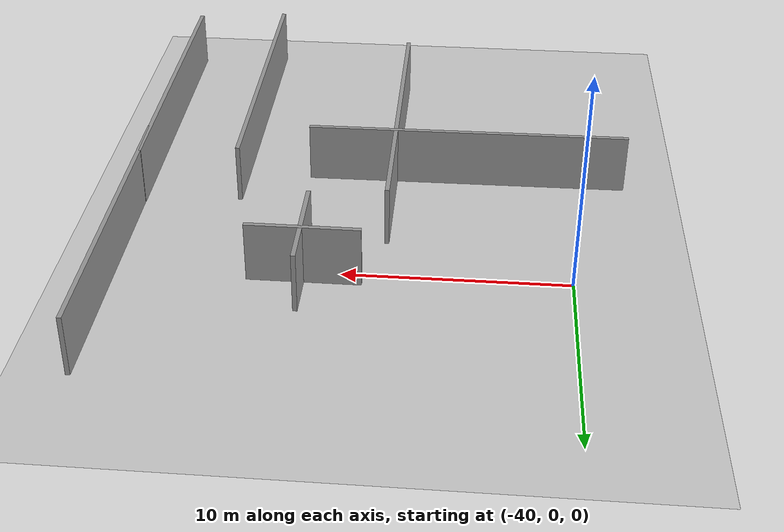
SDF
<sdf version="1.7">
 <world name="default">
  <model name="ground_plane">
   <static>1</static>
   <link name="link">
    <collision name="collision">
     <geometry><plane><normal>0 0 1</normal><size>100 100</size></plane></geometry>
     <surface>
      <contact><collide_bitmask>65535</collide_bitmask></contact>
      <friction><ode><mu>100</mu><mu2>50</mu2></ode></friction>
     </surface>
    </collision>
    <visual name="visual">
     <cast_shadows>0</cast_shadows>
     <geometry><plane><normal>0 0 1</normal><size>100 100</size></plane></geometry>
     <material>
      <script><uri>file://media/materials/scripts/gazebo.material</uri><name>Gazebo/Grey</name></script>
     </material>
    </visual>
   </link>
  </model>
  <model name="grey_wall_5">
   <link name="link">
    <pose>0 0 1.4 0 -0 0</pose>
    <inertial>
     <mass>1</mass>
     <inertia><ixx>1</ixx><ixy>0</ixy><ixz>0</ixz><iyy>1</iyy><iyz>0</iyz><izz>1</izz></inertia>
    </inertial>
    <visual name="visual">
     <cast_shadows>0</cast_shadows>
     <geometry><box><size>5 0.2 2.8</size></box></geometry>
     <material>
      <script>
       <uri>model://grey_wall/materials/scripts</uri>
       <uri>model://grey_wall/materials/textures</uri>
       <name>vrc/grey_wall</name>
      </script>
      <shader type="pixel"><normal_map>__default__</normal_map></shader>
      <ambient>1 1 1 1</ambient>
      <diffuse>1 1 1 1</diffuse>
      <specular>0 0 0 1</specular>
      <emissive>0 0 0 1</emissive>
     </material>
    </visual>
    <collision name="collision">
     <geometry><box><size>5 0.2 2.8</size></box></geometry>
     <surface>
      <friction>
       <ode><mu>1</mu><mu2>1</mu2><fdir1>0 0 0</fdir1><slip1>0</slip1><slip2>0</slip2></ode>
       <torsional>
        <coefficient>1</coefficient>
        <patch_radius>0</patch_radius>
        <surface_radius>0</surface_radius>
        <use_patch_radius>1</use_patch_radius>
        <ode><slip>0</slip></ode>
       </torsional>
      </friction>
      <bounce><restitution_coefficient>0</restitution_coefficient><threshold>1e+06</threshold></bounce>
      <contact>
       <collide_without_contact>0</collide_without_contact>
       <collide_without_contact_bitmask>1</collide_without_contact_bitmask>
       <collide_bitmask>1</collide_bitmask>
       <ode>
        <soft_cfm>0</soft_cfm>
        <soft_erp>0.2</soft_erp>
        <kp>1e+13</kp>
        <kd>1</kd>
        <max_vel>0.01</max_vel>
        <min_depth>0</min_depth>
       </ode>
       <bullet>
        <split_impulse>1</split_impulse>
        <split_impulse_penetration_threshold>-0.01</split_impulse_penetration_threshold>
        <soft_cfm>0</soft_cfm>
        <soft_erp>0.2</soft_erp>
        <kp>1e+13</kp>
        <kd>1</kd>
       </bullet>
      </contact>
     </surface>
    </collision>
   </link>
   <static>1</static>
   <pose>-28.4609 0.59119 0 0 0 -0.000612</pose>
  </model>
  <model name="grey_wall_15_clone_0_clone">
   <link name="link">
    <pose>0 0 1.4 0 -0 0</pose>
    <inertial>
     <mass>1</mass>
     <inertia><ixx>1</ixx><ixy>0</ixy><ixz>0</ixz><iyy>1</iyy><iyz>0</iyz><izz>1</izz></inertia>
    </inertial>
    <visual name="visual">
     <cast_shadows>0</cast_shadows>
     <geometry><box><size>15 0.2 2.8</size></box></geometry>
     <material>
      <script>
       <uri>model://grey_wall/materials/scripts</uri>
       <uri>model://grey_wall/materials/textures</uri>
       <name>vrc/grey_wall</name>
      </script>
      <shader type="pixel"><normal_map>__default__</normal_map></shader>
      <ambient>1 1 1 1</ambient>
      <diffuse>1 1 1 1</diffuse>
      <specular>0 0 0 1</specular>
      <emissive>0 0 0 1</emissive>
     </material>
    </visual>
    <collision name="collision">
     <geometry><box><size>15 0.2 2.8</size></box></geometry>
     <surface>
      <friction>
       <ode><mu>1</mu><mu2>1</mu2><fdir1>0 0 0</fdir1><slip1>0</slip1><slip2>0</slip2></ode>
       <torsional>
        <coefficient>1</coefficient>
        <patch_radius>0</patch_radius>
        <surface_radius>0</surface_radius>
        <use_patch_radius>1</use_patch_radius>
        <ode><slip>0</slip></ode>
       </torsional>
      </friction>
      <bounce><restitution_coefficient>0</restitution_coefficient><threshold>1e+06</threshold></bounce>
      <contact>
       <collide_without_contact>0</collide_without_contact>
       <collide_without_contact_bitmask>1</collide_without_contact_bitmask>
       <collide_bitmask>1</collide_bitmask>
       <ode>
        <soft_cfm>0</soft_cfm>
        <soft_erp>0.2</soft_erp>
        <kp>1e+13</kp>
        <kd>1</kd>
        <max_vel>0.01</max_vel>
        <min_depth>0</min_depth>
       </ode>
       <bullet>
        <split_impulse>1</split_impulse>
        <split_impulse_penetration_threshold>-0.01</split_impulse_penetration_threshold>
        <soft_cfm>0</soft_cfm>
        <soft_erp>0.2</soft_erp>
        <kp>1e+13</kp>
        <kd>1</kd>
       </bullet>
      </contact>
     </surface>
    </collision>
   </link>
   <static>1</static>
   <pose>-31.7874 -10.0693 0 0 -0 1.57141</pose>
  </model>
  <model name="grey_wall_5_clone_clone_0_clone_0">
   <link name="link">
    <pose>0 0 1.4 0 -0 0</pose>
    <inertial>
     <mass>1</mass>
     <inertia><ixx>1</ixx><ixy>0</ixy><ixz>0</ixz><iyy>1</iyy><iyz>0</iyz><izz>1</izz></inertia>
    </inertial>
    <visual name="visual">
     <cast_shadows>0</cast_shadows>
     <geometry><box><size>5 0.2 2.8</size></box></geometry>
     <material>
      <script>
       <uri>model://grey_wall/materials/scripts</uri>
       <uri>model://grey_wall/materials/textures</uri>
       <name>vrc/grey_wall</name>
      </script>
      <shader type="pixel"><normal_map>__default__</normal_map></shader>
      <ambient>1 1 1 1</ambient>
      <diffuse>1 1 1 1</diffuse>
      <specular>0 0 0 1</specular>
      <emissive>0 0 0 1</emissive>
     </material>
    </visual>
    <collision name="collision">
     <geometry><box><size>5 0.2 2.8</size></box></geometry>
     <surface>
      <friction>
       <ode><mu>1</mu><mu2>1</mu2><fdir1>0 0 0</fdir1><slip1>0</slip1><slip2>0</slip2></ode>
       <torsional>
        <coefficient>1</coefficient>
        <patch_radius>0</patch_radius>
        <surface_radius>0</surface_radius>
        <use_patch_radius>1</use_patch_radius>
        <ode><slip>0</slip></ode>
       </torsional>
      </friction>
      <bounce><restitution_coefficient>0</restitution_coefficient><threshold>1e+06</threshold></bounce>
      <contact>
       <collide_without_contact>0</collide_without_contact>
       <collide_without_contact_bitmask>1</collide_without_contact_bitmask>
       <collide_bitmask>1</collide_bitmask>
       <ode>
        <soft_cfm>0</soft_cfm>
        <soft_erp>0.2</soft_erp>
        <kp>1e+13</kp>
        <kd>1</kd>
        <max_vel>0.01</max_vel>
        <min_depth>0</min_depth>
       </ode>
       <bullet>
        <split_impulse>1</split_impulse>
        <split_impulse_penetration_threshold>-0.01</split_impulse_penetration_threshold>
        <soft_cfm>0</soft_cfm>
        <soft_erp>0.2</soft_erp>
        <kp>1e+13</kp>
        <kd>1</kd>
       </bullet>
      </contact>
     </surface>
    </collision>
   </link>
   <static>1</static>
   <pose>-28.3665 0.251575 0 0 -0 1.57141</pose>
  </model>
  <model name="grey_wall_15_clone_0_clone_clone_0">
   <link name="link">
    <pose>0 0 1.4 0 -0 0</pose>
    <inertial>
     <mass>1</mass>
     <inertia><ixx>1</ixx><ixy>0</ixy><ixz>0</ixz><iyy>1</iyy><iyz>0</iyz><izz>1</izz></inertia>
    </inertial>
    <visual name="visual">
     <cast_shadows>0</cast_shadows>
     <geometry><box><size>15 0.2 2.8</size></box></geometry>
     <material>
      <script>
       <uri>model://grey_wall/materials/scripts</uri>
       <uri>model://grey_wall/materials/textures</uri>
       <name>vrc/grey_wall</name>
      </script>
      <shader type="pixel"><normal_map>__default__</normal_map></shader>
      <ambient>1 1 1 1</ambient>
      <diffuse>1 1 1 1</diffuse>
      <specular>0 0 0 1</specular>
      <emissive>0 0 0 1</emissive>
     </material>
    </visual>
    <collision name="collision">
     <geometry><box><size>15 0.2 2.8</size></box></geometry>
     <surface>
      <friction>
       <ode><mu>1</mu><mu2>1</mu2><fdir1>0 0 0</fdir1><slip1>0</slip1><slip2>0</slip2></ode>
       <torsional>
        <coefficient>1</coefficient>
        <patch_radius>0</patch_radius>
        <surface_radius>0</surface_radius>
        <use_patch_radius>1</use_patch_radius>
        <ode><slip>0</slip></ode>
       </torsional>
      </friction>
      <bounce><restitution_coefficient>0</restitution_coefficient><threshold>1e+06</threshold></bounce>
      <contact>
       <collide_without_contact>0</collide_without_contact>
       <collide_without_contact_bitmask>1</collide_without_contact_bitmask>
       <collide_bitmask>1</collide_bitmask>
       <ode>
        <soft_cfm>0</soft_cfm>
        <soft_erp>0.2</soft_erp>
        <kp>1e+13</kp>
        <kd>1</kd>
        <max_vel>0.01</max_vel>
        <min_depth>0</min_depth>
       </ode>
       <bullet>
        <split_impulse>1</split_impulse>
        <split_impulse_penetration_threshold>-0.01</split_impulse_penetration_threshold>
        <soft_cfm>0</soft_cfm>
        <soft_erp>0.2</soft_erp>
        <kp>1e+13</kp>
        <kd>1</kd>
       </bullet>
      </contact>
     </surface>
    </collision>
   </link>
   <static>1</static>
   <pose>-20.114 0.093653 0 0 -0 1.57141</pose>
  </model>
  <model name="grey_wall_15_clone_0_clone_clone_0_clone">
   <link name="link">
    <pose>0 0 1.4 0 -0 0</pose>
    <inertial>
     <mass>1</mass>
     <inertia><ixx>1</ixx><ixy>0</ixy><ixz>0</ixz><iyy>1</iyy><iyz>0</iyz><izz>1</izz></inertia>
    </inertial>
    <visual name="visual">
     <cast_shadows>0</cast_shadows>
     <geometry><box><size>15 0.2 2.8</size></box></geometry>
     <material>
      <script>
       <uri>model://grey_wall/materials/scripts</uri>
       <uri>model://grey_wall/materials/textures</uri>
       <name>vrc/grey_wall</name>
      </script>
      <shader type="pixel"><normal_map>__default__</normal_map></shader>
      <ambient>1 1 1 1</ambient>
      <diffuse>1 1 1 1</diffuse>
      <specular>0 0 0 1</specular>
      <emissive>0 0 0 1</emissive>
     </material>
    </visual>
    <collision name="collision">
     <geometry><box><size>15 0.2 2.8</size></box></geometry>
     <surface>
      <friction>
       <ode><mu>1</mu><mu2>1</mu2><fdir1>0 0 0</fdir1><slip1>0</slip1><slip2>0</slip2></ode>
       <torsional>
        <coefficient>1</coefficient>
        <patch_radius>0</patch_radius>
        <surface_radius>0</surface_radius>
        <use_patch_radius>1</use_patch_radius>
        <ode><slip>0</slip></ode>
       </torsional>
      </friction>
      <bounce><restitution_coefficient>0</restitution_coefficient><threshold>1e+06</threshold></bounce>
      <contact>
       <collide_without_contact>0</collide_without_contact>
       <collide_without_contact_bitmask>1</collide_without_contact_bitmask>
       <collide_bitmask>1</collide_bitmask>
       <ode>
        <soft_cfm>0</soft_cfm>
        <soft_erp>0.2</soft_erp>
        <kp>1e+13</kp>
        <kd>1</kd>
        <max_vel>0.01</max_vel>
        <min_depth>0</min_depth>
       </ode>
       <bullet>
        <split_impulse>1</split_impulse>
        <split_impulse_penetration_threshold>-0.01</split_impulse_penetration_threshold>
        <soft_cfm>0</soft_cfm>
        <soft_erp>0.2</soft_erp>
        <kp>1e+13</kp>
        <kd>1</kd>
       </bullet>
      </contact>
     </surface>
    </collision>
   </link>
   <static>1</static>
   <pose>-20.1223 -12.5258 0 0 -0 1.57141</pose>
  </model>
  <model name="grey_wall_15_clone_0_clone_clone_2">
   <link name="link">
    <pose>0 0 1.4 0 -0 0</pose>
    <inertial>
     <mass>1</mass>
     <inertia><ixx>1</ixx><ixy>0</ixy><ixz>0</ixz><iyy>1</iyy><iyz>0</iyz><izz>1</izz></inertia>
    </inertial>
    <visual name="visual">
     <cast_shadows>0</cast_shadows>
     <geometry><box><size>15 0.2 2.8</size></box></geometry>
     <material>
      <script>
       <uri>model://grey_wall/materials/scripts</uri>
       <uri>model://grey_wall/materials/textures</uri>
       <name>vrc/grey_wall</name>
      </script>
      <shader type="pixel"><normal_map>__default__</normal_map></shader>
      <ambient>1 1 1 1</ambient>
      <diffuse>1 1 1 1</diffuse>
      <specular>0 0 0 1</specular>
      <emissive>0 0 0 1</emissive>
     </material>
    </visual>
    <collision name="collision">
     <geometry><box><size>15 0.2 2.8</size></box></geometry>
     <surface>
      <friction>
       <ode><mu>1</mu><mu2>1</mu2><fdir1>0 0 0</fdir1><slip1>0</slip1><slip2>0</slip2></ode>
       <torsional>
        <coefficient>1</coefficient>
        <patch_radius>0</patch_radius>
        <surface_radius>0</surface_radius>
        <use_patch_radius>1</use_patch_radius>
        <ode><slip>0</slip></ode>
       </torsional>
      </friction>
      <bounce><restitution_coefficient>0</restitution_coefficient><threshold>1e+06</threshold></bounce>
      <contact>
       <collide_without_contact>0</collide_without_contact>
       <collide_without_contact_bitmask>1</collide_without_contact_bitmask>
       <collide_bitmask>1</collide_bitmask>
       <ode>
        <soft_cfm>0</soft_cfm>
        <soft_erp>0.2</soft_erp>
        <kp>1e+13</kp>
        <kd>1</kd>
        <max_vel>0.01</max_vel>
        <min_depth>0</min_depth>
       </ode>
       <bullet>
        <split_impulse>1</split_impulse>
        <split_impulse_penetration_threshold>-0.01</split_impulse_penetration_threshold>
        <soft_cfm>0</soft_cfm>
        <soft_erp>0.2</soft_erp>
        <kp>1e+13</kp>
        <kd>1</kd>
       </bullet>
      </contact>
     </surface>
    </collision>
   </link>
   <static>1</static>
   <pose>-24.6087 -13.1552 0 0 -0 1.57141</pose>
  </model>
  <model name="grey_wall_15_clone_0_clone_0_clone_clone">
   <link name="link">
    <pose>0 0 1.4 0 -0 0</pose>
    <inertial>
     <mass>1</mass>
     <inertia><ixx>1</ixx><ixy>0</ixy><ixz>0</ixz><iyy>1</iyy><iyz>0</iyz><izz>1</izz></inertia>
    </inertial>
    <visual name="visual">
     <cast_shadows>0</cast_shadows>
     <geometry><box><size>15 0.2 2.8</size></box></geometry>
     <material>
      <script>
       <uri>model://grey_wall/materials/scripts</uri>
       <uri>model://grey_wall/materials/textures</uri>
       <name>vrc/grey_wall</name>
      </script>
      <shader type="pixel"><normal_map>__default__</normal_map></shader>
      <ambient>1 1 1 1</ambient>
      <diffuse>1 1 1 1</diffuse>
      <specular>0 0 0 1</specular>
      <emissive>0 0 0 1</emissive>
     </material>
    </visual>
    <collision name="collision">
     <geometry><box><size>15 0.2 2.8</size></box></geometry>
     <surface>
      <friction>
       <ode><mu>1</mu><mu2>1</mu2><fdir1>0 0 0</fdir1><slip1>0</slip1><slip2>0</slip2></ode>
       <torsional>
        <coefficient>1</coefficient>
        <patch_radius>0</patch_radius>
        <surface_radius>0</surface_radius>
        <use_patch_radius>1</use_patch_radius>
        <ode><slip>0</slip></ode>
       </torsional>
      </friction>
      <bounce><restitution_coefficient>0</restitution_coefficient><threshold>1e+06</threshold></bounce>
      <contact>
       <collide_without_contact>0</collide_without_contact>
       <collide_without_contact_bitmask>1</collide_without_contact_bitmask>
       <collide_bitmask>1</collide_bitmask>
       <ode>
        <soft_cfm>0</soft_cfm>
        <soft_erp>0.2</soft_erp>
        <kp>1e+13</kp>
        <kd>1</kd>
        <max_vel>0.01</max_vel>
        <min_depth>0</min_depth>
       </ode>
       <bullet>
        <split_impulse>1</split_impulse>
        <split_impulse_penetration_threshold>-0.01</split_impulse_penetration_threshold>
        <soft_cfm>0</soft_cfm>
        <soft_erp>0.2</soft_erp>
        <kp>1e+13</kp>
        <kd>1</kd>
       </bullet>
      </contact>
     </surface>
    </collision>
   </link>
   <static>1</static>
   <pose>-35.1768 -8.07846 -0.000269 0.000759 0.000627 -3.13272</pose>
  </model>
 </world>
</sdf>
